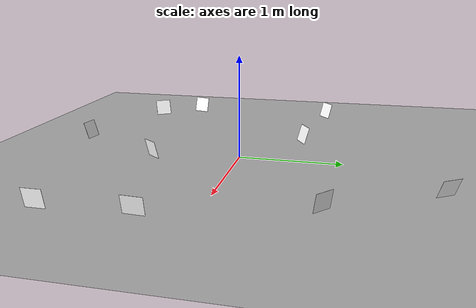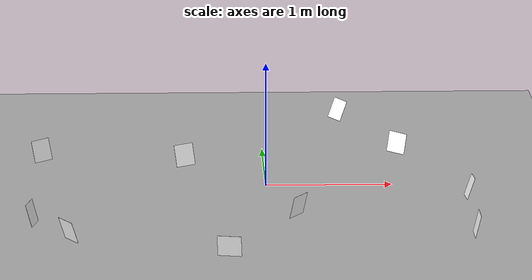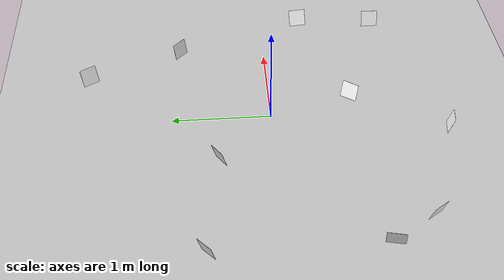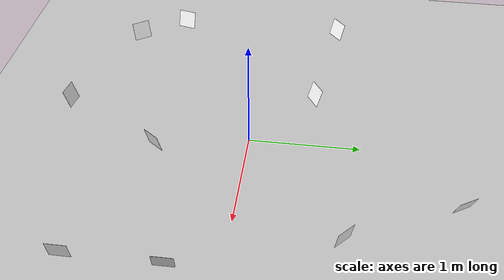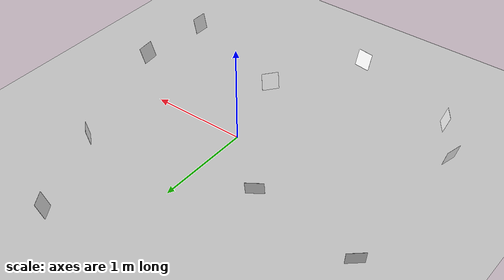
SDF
<sdf version="1.7">
 <world name="default">
  <physics name="normal" type="ode">
   <real_time_update_rate>1000</real_time_update_rate>
   <max_step_size>0.001</max_step_size>
   <real_time_factor>1</real_time_factor>
  </physics>
  <model name="ground_plane">
   <static>1</static>
   <link name="link">
    <collision name="collision">
     <geometry><plane><normal>0 0 1</normal><size>100 100</size></plane></geometry>
     <surface>
      <contact><collide_bitmask>65535</collide_bitmask></contact>
      <friction><ode><mu>100</mu><mu2>50</mu2></ode></friction>
     </surface>
    </collision>
    <visual name="visual">
     <cast_shadows>0</cast_shadows>
     <geometry><plane><normal>0 0 1</normal><size>100 100</size></plane></geometry>
     <material>
      <script><uri>file://media/materials/scripts/gazebo.material</uri><name>Gazebo/Grey</name></script>
     </material>
    </visual>
   </link>
  </model>
  <light name="sun" type="directional">
   <pose>0 0 10 0 -0 0</pose>
   <diffuse>0.8 0.8 0.8 1</diffuse>
   <specular>0.2 0.2 0.2 1</specular>
   <attenuation>
    <range>1000</range>
    <constant>0.9</constant>
    <linear>0.01</linear>
    <quadratic>0.001</quadratic>
   </attenuation>
   <direction>-0.5 0.1 -0.9</direction>
   <spot><inner_angle>0</inner_angle><outer_angle>0</outer_angle><falloff>0</falloff></spot>
  </light>
  <gravity>0 0 -9.8</gravity>
  <magnetic_field>6e-06 2.3e-05 -4.2e-05</magnetic_field>
  <atmosphere type="adiabatic"/>
  <scene><ambient>0.4 0.4 0.4 1</ambient><background>0.7 0.7 0.7 1</background><shadows>1</shadows></scene>
  <spherical_coordinates>
   <surface_model>EARTH_WGS84</surface_model>
   <latitude_deg>0</latitude_deg>
   <longitude_deg>0</longitude_deg>
   <elevation>0</elevation>
   <heading_deg>0</heading_deg>
  </spherical_coordinates>
  <model name="marker_1">
   <link name="marker">
    <visual name="visual">
     <geometry><box><size>0.1778 0.1778 1e-05</size></box></geometry>
     <material>
      <script>
       <uri>model://marker_1/materials/scripts</uri>
       <uri>model://marker_1/materials/textures</uri>
       <name>ArucoVisualMarker1/Marker</name>
      </script>
      <ambient>1 1 1 1</ambient>
      <diffuse>1 1 1 1</diffuse>
      <specular>0 0 0 1</specular>
      <emissive>1 1 1 0</emissive>
      <shader type="vertex"><normal_map>__default__</normal_map></shader>
     </material>
    </visual>
    <collision name="collision"><geometry><box><size>0.1778 0.1778 1e-05</size></box></geometry></collision>
   </link>
   <link name="marker_pad">
    <pose relative_to="marker">0 0 -0.001 0 -0 0</pose>
    <visual name="visual">
     <geometry><box><size>0.1778 0.1778 1e-05</size></box></geometry>
     <material>
      <lighting>1</lighting>
      <script><uri>file://media/materials/scripts/gazebo.material</uri><name>Gazebo/White</name></script>
      <ambient>0.3 0.3 0.3 1</ambient>
      <diffuse>0.7 0.7 0.7 1</diffuse>
      <specular>0.01 0.01 0.01 1</specular>
      <emissive>1 1 1 0</emissive>
      <shader type="vertex"><normal_map>__default__</normal_map></shader>
     </material>
    </visual>
    <collision name="collision"><geometry><box><size>0.1778 0.1778 1e-05</size></box></geometry></collision>
   </link>
   <joint name="marker_JOINT_marker_pad" type="revolute">
    <parent>marker</parent>
    <child>marker_pad</child>
    <axis>
     <xyz>0 0 1</xyz>
     <limit><upper>0</upper><lower>0</lower></limit>
     <dynamics><spring_reference>0</spring_reference><spring_stiffness>0</spring_stiffness></dynamics>
    </axis>
   </joint>
   <static>1</static>
   <pose>-1.8023 -0.932298 0.089284 0.015151 -1.30029 2.90101</pose>
  </model>
  <model name="marker_2">
   <link name="marker">
    <visual name="visual">
     <geometry><box><size>0.1778 0.1778 1e-05</size></box></geometry>
     <material>
      <script>
       <uri>model://marker_2/materials/scripts</uri>
       <uri>model://marker_2/materials/textures</uri>
       <name>ArucoVisualMarker2/Marker</name>
      </script>
      <ambient>1 1 1 1</ambient>
      <diffuse>1 1 1 1</diffuse>
      <specular>0 0 0 1</specular>
      <emissive>1 1 1 0</emissive>
      <shader type="vertex"><normal_map>__default__</normal_map></shader>
     </material>
    </visual>
    <collision name="collision"><geometry><box><size>0.1778 0.1778 1e-05</size></box></geometry></collision>
   </link>
   <link name="marker_pad">
    <pose relative_to="marker">0 0 -0.001 0 -0 0</pose>
    <visual name="visual">
     <geometry><box><size>0.1778 0.1778 1e-05</size></box></geometry>
     <material>
      <lighting>1</lighting>
      <script><uri>file://media/materials/scripts/gazebo.material</uri><name>Gazebo/White</name></script>
      <ambient>0.3 0.3 0.3 1</ambient>
      <diffuse>0.7 0.7 0.7 1</diffuse>
      <specular>0.01 0.01 0.01 1</specular>
      <emissive>1 1 1 0</emissive>
      <shader type="vertex"><normal_map>__default__</normal_map></shader>
     </material>
    </visual>
    <collision name="collision"><geometry><box><size>0.1778 0.1778 1e-05</size></box></geometry></collision>
   </link>
   <joint name="marker_JOINT_marker_pad" type="revolute">
    <parent>marker</parent>
    <child>marker_pad</child>
    <axis>
     <xyz>0 0 1</xyz>
     <limit><upper>0</upper><lower>0</lower></limit>
     <dynamics><spring_reference>0</spring_reference><spring_stiffness>0</spring_stiffness></dynamics>
    </axis>
   </joint>
   <static>1</static>
   <pose>-1.51013 -1.36608 0.094945 0.007184 -1.24069 -2.53167</pose>
  </model>
  <model name="marker_4">
   <link name="marker">
    <visual name="visual">
     <geometry><box><size>0.1778 0.1778 1e-05</size></box></geometry>
     <material>
      <script>
       <uri>model://marker_4/materials/scripts</uri>
       <uri>model://marker_4/materials/textures</uri>
       <name>ArucoVisualMarker4/Marker</name>
      </script>
      <ambient>1 1 1 1</ambient>
      <diffuse>1 1 1 1</diffuse>
      <specular>0 0 0 1</specular>
      <emissive>1 1 1 0</emissive>
      <shader type="vertex"><normal_map>__default__</normal_map></shader>
     </material>
    </visual>
    <collision name="collision"><geometry><box><size>0.1778 0.1778 1e-05</size></box></geometry></collision>
   </link>
   <link name="marker_pad">
    <pose relative_to="marker">0 0 -0.001 0 -0 0</pose>
    <visual name="visual">
     <geometry><box><size>0.1778 0.1778 1e-05</size></box></geometry>
     <material>
      <lighting>1</lighting>
      <script><uri>file://media/materials/scripts/gazebo.material</uri><name>Gazebo/White</name></script>
      <ambient>0.3 0.3 0.3 1</ambient>
      <diffuse>0.7 0.7 0.7 1</diffuse>
      <specular>0.01 0.01 0.01 1</specular>
      <emissive>1 1 1 0</emissive>
      <shader type="vertex"><normal_map>__default__</normal_map></shader>
     </material>
    </visual>
    <collision name="collision"><geometry><box><size>0.1778 0.1778 1e-05</size></box></geometry></collision>
   </link>
   <joint name="marker_JOINT_marker_pad" type="revolute">
    <parent>marker</parent>
    <child>marker_pad</child>
    <axis>
     <xyz>0 0 1</xyz>
     <limit><upper>0</upper><lower>0</lower></limit>
     <dynamics><spring_reference>0</spring_reference><spring_stiffness>0</spring_stiffness></dynamics>
    </axis>
   </joint>
   <static>1</static>
   <pose>1.10934 0.9017 0.075271 0.060525 -1.36472 0.779059</pose>
  </model>
  <model name="marker_5">
   <link name="marker">
    <visual name="visual">
     <geometry><box><size>0.1778 0.1778 1e-05</size></box></geometry>
     <material>
      <script>
       <uri>model://marker_5/materials/scripts</uri>
       <uri>model://marker_5/materials/textures</uri>
       <name>ArucoVisualMarker5/Marker</name>
      </script>
      <ambient>1 1 1 1</ambient>
      <diffuse>1 1 1 1</diffuse>
      <specular>0 0 0 1</specular>
      <emissive>1 1 1 0</emissive>
      <shader type="vertex"><normal_map>__default__</normal_map></shader>
     </material>
    </visual>
    <collision name="collision"><geometry><box><size>0.1778 0.1778 1e-05</size></box></geometry></collision>
   </link>
   <link name="marker_pad">
    <pose relative_to="marker">0 0 -0.001 0 -0 0</pose>
    <visual name="visual">
     <geometry><box><size>0.1778 0.1778 1e-05</size></box></geometry>
     <material>
      <lighting>1</lighting>
      <script><uri>file://media/materials/scripts/gazebo.material</uri><name>Gazebo/White</name></script>
      <ambient>0.3 0.3 0.3 1</ambient>
      <diffuse>0.7 0.7 0.7 1</diffuse>
      <specular>0.01 0.01 0.01 1</specular>
      <emissive>1 1 1 0</emissive>
      <shader type="vertex"><normal_map>__default__</normal_map></shader>
     </material>
    </visual>
    <collision name="collision"><geometry><box><size>0.1778 0.1778 1e-05</size></box></geometry></collision>
   </link>
   <joint name="marker_JOINT_marker_pad" type="revolute">
    <parent>marker</parent>
    <child>marker_pad</child>
    <axis>
     <xyz>0 0 1</xyz>
     <limit><upper>0</upper><lower>0</lower></limit>
     <dynamics><spring_reference>0</spring_reference><spring_stiffness>0</spring_stiffness></dynamics>
    </axis>
   </joint>
   <static>1</static>
   <pose>-1.80472 0.703269 0.093906 0.031897 -1.28066 2.25841</pose>
  </model>
  <model name="marker_6">
   <link name="marker">
    <visual name="visual">
     <geometry><box><size>0.1778 0.1778 1e-05</size></box></geometry>
     <material>
      <script>
       <uri>model://marker_6/materials/scripts</uri>
       <uri>model://marker_6/materials/textures</uri>
       <name>ArucoVisualMarker6/Marker</name>
      </script>
      <ambient>1 1 1 1</ambient>
      <diffuse>1 1 1 1</diffuse>
      <specular>0 0 0 1</specular>
      <emissive>1 1 1 0</emissive>
      <shader type="vertex"><normal_map>__default__</normal_map></shader>
     </material>
    </visual>
    <collision name="collision"><geometry><box><size>0.1778 0.1778 1e-05</size></box></geometry></collision>
   </link>
   <link name="marker_pad">
    <pose relative_to="marker">0 0 -0.001 0 -0 0</pose>
    <visual name="visual">
     <geometry><box><size>0.1778 0.1778 1e-05</size></box></geometry>
     <material>
      <lighting>1</lighting>
      <script><uri>file://media/materials/scripts/gazebo.material</uri><name>Gazebo/White</name></script>
      <ambient>0.3 0.3 0.3 1</ambient>
      <diffuse>0.7 0.7 0.7 1</diffuse>
      <specular>0.01 0.01 0.01 1</specular>
      <emissive>1 1 1 0</emissive>
      <shader type="vertex"><normal_map>__default__</normal_map></shader>
     </material>
    </visual>
    <collision name="collision"><geometry><box><size>0.1778 0.1778 1e-05</size></box></geometry></collision>
   </link>
   <joint name="marker_JOINT_marker_pad" type="revolute">
    <parent>marker</parent>
    <child>marker_pad</child>
    <axis>
     <xyz>0 0 1</xyz>
     <limit><upper>0</upper><lower>0</lower></limit>
     <dynamics><spring_reference>0</spring_reference><spring_stiffness>0</spring_stiffness></dynamics>
    </axis>
   </joint>
   <static>1</static>
   <pose>-0.322332 -1.75962 0.095183 -0.028099 -1.25226 -1.69947</pose>
  </model>
  <model name="marker_7">
   <link name="marker">
    <visual name="visual">
     <geometry><box><size>0.1778 0.1778 1e-05</size></box></geometry>
     <material>
      <script>
       <uri>model://marker_7/materials/scripts</uri>
       <uri>model://marker_7/materials/textures</uri>
       <name>ArucoVisualMarker7/Marker</name>
      </script>
      <ambient>1 1 1 1</ambient>
      <diffuse>1 1 1 1</diffuse>
      <specular>0 0 0 1</specular>
      <emissive>1 1 1 0</emissive>
      <shader type="vertex"><normal_map>__default__</normal_map></shader>
     </material>
    </visual>
    <collision name="collision"><geometry><box><size>0.1778 0.1778 1e-05</size></box></geometry></collision>
   </link>
   <link name="marker_pad">
    <pose relative_to="marker">0 0 -0.001 0 -0 0</pose>
    <visual name="visual">
     <geometry><box><size>0.1778 0.1778 1e-05</size></box></geometry>
     <material>
      <lighting>1</lighting>
      <script><uri>file://media/materials/scripts/gazebo.material</uri><name>Gazebo/White</name></script>
      <ambient>0.3 0.3 0.3 1</ambient>
      <diffuse>0.7 0.7 0.7 1</diffuse>
      <specular>0.01 0.01 0.01 1</specular>
      <emissive>1 1 1 0</emissive>
      <shader type="vertex"><normal_map>__default__</normal_map></shader>
     </material>
    </visual>
    <collision name="collision"><geometry><box><size>0.1778 0.1778 1e-05</size></box></geometry></collision>
   </link>
   <joint name="marker_JOINT_marker_pad" type="revolute">
    <parent>marker</parent>
    <child>marker_pad</child>
    <axis>
     <xyz>0 0 1</xyz>
     <limit><upper>0</upper><lower>0</lower></limit>
     <dynamics><spring_reference>0</spring_reference><spring_stiffness>0</spring_stiffness></dynamics>
    </axis>
   </joint>
   <static>1</static>
   <pose>0.223272 -0.827078 0.101446 0.035225 -1.32088 -0.68549</pose>
  </model>
  <model name="marker_3">
   <link name="marker">
    <visual name="visual">
     <geometry><box><size>0.1778 0.1778 1e-05</size></box></geometry>
     <material>
      <script>
       <uri>model://marker_3/materials/scripts</uri>
       <uri>model://marker_3/materials/textures</uri>
       <name>ArucoVisualMarker3/Marker</name>
      </script>
      <ambient>1 1 1 1</ambient>
      <diffuse>1 1 1 1</diffuse>
      <specular>0 0 0 1</specular>
      <emissive>1 1 1 0</emissive>
      <shader type="vertex"><normal_map>__default__</normal_map></shader>
     </material>
    </visual>
    <collision name="collision"><geometry><box><size>0.1778 0.1778 1e-05</size></box></geometry></collision>
   </link>
   <link name="marker_pad">
    <pose relative_to="marker">0 0 -0.001 0 -0 0</pose>
    <visual name="visual">
     <geometry><box><size>0.1778 0.1778 1e-05</size></box></geometry>
     <material>
      <lighting>1</lighting>
      <script><uri>file://media/materials/scripts/gazebo.material</uri><name>Gazebo/White</name></script>
      <ambient>0.3 0.3 0.3 1</ambient>
      <diffuse>0.7 0.7 0.7 1</diffuse>
      <specular>0.01 0.01 0.01 1</specular>
      <emissive>1 1 1 0</emissive>
      <shader type="vertex"><normal_map>__default__</normal_map></shader>
     </material>
    </visual>
    <collision name="collision"><geometry><box><size>0.1778 0.1778 1e-05</size></box></geometry></collision>
   </link>
   <joint name="marker_JOINT_marker_pad" type="revolute">
    <parent>marker</parent>
    <child>marker_pad</child>
    <axis>
     <xyz>0 0 1</xyz>
     <limit><upper>0</upper><lower>0</lower></limit>
     <dynamics><spring_reference>0</spring_reference><spring_stiffness>0</spring_stiffness></dynamics>
    </axis>
   </joint>
   <static>1</static>
   <pose>0.674522 1.8536 0.098189 0.014046 -1.15644 0.550622</pose>
  </model>
  <model name="marker_30">
   <link name="marker">
    <visual name="visual">
     <geometry><box><size>0.1778 0.1778 1e-05</size></box></geometry>
     <material>
      <script>
       <uri>model://marker_30/materials/scripts</uri>
       <uri>model://marker_30/materials/textures</uri>
       <name>ArucoVisualMarker30/Marker</name>
      </script>
      <ambient>1 1 1 1</ambient>
      <diffuse>1 1 1 1</diffuse>
      <specular>0 0 0 1</specular>
      <emissive>1 1 1 0</emissive>
      <shader type="vertex"><normal_map>__default__</normal_map></shader>
     </material>
    </visual>
    <collision name="collision"><geometry><box><size>0.1778 0.1778 1e-05</size></box></geometry></collision>
   </link>
   <link name="marker_pad">
    <pose relative_to="marker">0 0 -0.001 0 -0 0</pose>
    <visual name="visual">
     <geometry><box><size>0.1778 0.1778 1e-05</size></box></geometry>
     <material>
      <lighting>1</lighting>
      <script><uri>file://media/materials/scripts/gazebo.material</uri><name>Gazebo/White</name></script>
      <ambient>0.3 0.3 0.3 1</ambient>
      <diffuse>0.7 0.7 0.7 1</diffuse>
      <specular>0.01 0.01 0.01 1</specular>
      <emissive>1 1 1 0</emissive>
      <shader type="vertex"><normal_map>__default__</normal_map></shader>
     </material>
    </visual>
    <collision name="collision"><geometry><box><size>0.1778 0.1778 1e-05</size></box></geometry></collision>
   </link>
   <joint name="marker_JOINT_marker_pad" type="revolute">
    <parent>marker</parent>
    <child>marker_pad</child>
    <axis>
     <xyz>0 0 1</xyz>
     <limit><upper>0</upper><lower>0</lower></limit>
     <dynamics><spring_reference>0</spring_reference><spring_stiffness>0</spring_stiffness></dynamics>
    </axis>
   </joint>
   <static>1</static>
   <pose>1.54346 -1.25437 0.082035 -0 -1.34569 -5e-06</pose>
  </model>
  <model name="marker_21">
   <link name="marker">
    <visual name="visual">
     <geometry><box><size>0.1778 0.1778 1e-05</size></box></geometry>
     <material>
      <script>
       <uri>model://marker_21/materials/scripts</uri>
       <uri>model://marker_21/materials/textures</uri>
       <name>ArucoVisualMarker21/Marker</name>
      </script>
      <ambient>1 1 1 1</ambient>
      <diffuse>1 1 1 1</diffuse>
      <specular>0 0 0 1</specular>
      <emissive>1 1 1 0</emissive>
      <shader type="vertex"><normal_map>__default__</normal_map></shader>
     </material>
    </visual>
    <collision name="collision"><geometry><box><size>0.1778 0.1778 1e-05</size></box></geometry></collision>
   </link>
   <link name="marker_pad">
    <pose relative_to="marker">0 0 -0.001 0 -0 0</pose>
    <visual name="visual">
     <geometry><box><size>0.1778 0.1778 1e-05</size></box></geometry>
     <material>
      <lighting>1</lighting>
      <script><uri>file://media/materials/scripts/gazebo.material</uri><name>Gazebo/White</name></script>
      <ambient>0.3 0.3 0.3 1</ambient>
      <diffuse>0.7 0.7 0.7 1</diffuse>
      <specular>0.01 0.01 0.01 1</specular>
      <emissive>1 1 1 0</emissive>
      <shader type="vertex"><normal_map>__default__</normal_map></shader>
     </material>
    </visual>
    <collision name="collision"><geometry><box><size>0.1778 0.1778 1e-05</size></box></geometry></collision>
   </link>
   <joint name="marker_JOINT_marker_pad" type="revolute">
    <parent>marker</parent>
    <child>marker_pad</child>
    <axis>
     <xyz>0 0 1</xyz>
     <limit><upper>0</upper><lower>0</lower></limit>
     <dynamics><spring_reference>0</spring_reference><spring_stiffness>0</spring_stiffness></dynamics>
    </axis>
   </joint>
   <static>1</static>
   <pose>-0.640872 0.548311 0.092993 0.088034 -1.27297 2.06124</pose>
  </model>
  <model name="marker_15">
   <link name="marker">
    <visual name="visual">
     <geometry><box><size>0.1778 0.1778 1e-05</size></box></geometry>
     <material>
      <script>
       <uri>model://marker_15/materials/scripts</uri>
       <uri>model://marker_15/materials/textures</uri>
       <name>ArucoVisualMarker15/Marker</name>
      </script>
      <ambient>1 1 1 1</ambient>
      <diffuse>1 1 1 1</diffuse>
      <specular>0 0 0 1</specular>
      <emissive>1 1 1 0</emissive>
      <shader type="vertex"><normal_map>__default__</normal_map></shader>
     </material>
    </visual>
    <collision name="collision"><geometry><box><size>0.1778 0.1778 1e-05</size></box></geometry></collision>
   </link>
   <link name="marker_pad">
    <pose relative_to="marker">0 0 -0.001 0 -0 0</pose>
    <visual name="visual">
     <geometry><box><size>0.1778 0.1778 1e-05</size></box></geometry>
     <material>
      <lighting>1</lighting>
      <script><uri>file://media/materials/scripts/gazebo.material</uri><name>Gazebo/White</name></script>
      <ambient>0.3 0.3 0.3 1</ambient>
      <diffuse>0.7 0.7 0.7 1</diffuse>
      <specular>0.01 0.01 0.01 1</specular>
      <emissive>1 1 1 0</emissive>
      <shader type="vertex"><normal_map>__default__</normal_map></shader>
     </material>
    </visual>
    <collision name="collision"><geometry><box><size>0.1778 0.1778 1e-05</size></box></geometry></collision>
   </link>
   <joint name="marker_JOINT_marker_pad" type="revolute">
    <parent>marker</parent>
    <child>marker_pad</child>
    <axis>
     <xyz>0 0 1</xyz>
     <limit><upper>0</upper><lower>0</lower></limit>
     <dynamics><spring_reference>0</spring_reference><spring_stiffness>0</spring_stiffness></dynamics>
    </axis>
   </joint>
   <static>1</static>
   <pose>1.5722 -0.427395 0.114258 -0.160273 -1.23583 0.195342</pose>
  </model>
 </world>
</sdf>
